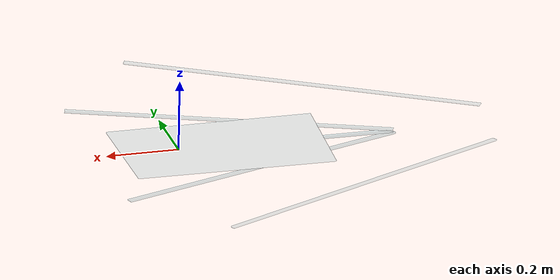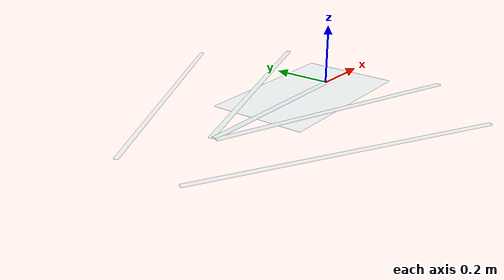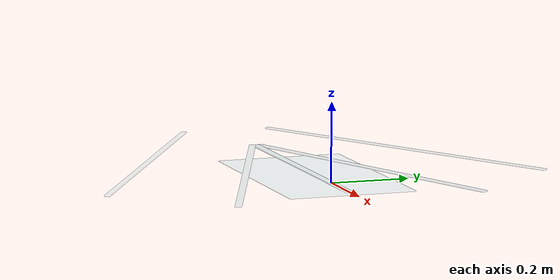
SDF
<?xml version="1.0"?>
<sdf version="1.9">
  <model name="rov_surface_wake">
    <static>true</static>
    <link name="link">
      <visual name="wake_center">
        <pose>-0.22 0 0 0 0 0</pose>
        <geometry><box><size>0.72 0.018 0.003</size></box></geometry>
        <material>
          <ambient>0.78 0.96 1.0 0.40</ambient>
          <diffuse>0.78 0.96 1.0 0.40</diffuse>
          <specular>0.90 1.00 1.00 0.55</specular>
        </material>
        <transparency>0.58</transparency>
      </visual>
      <visual name="wake_left_inner">
        <pose>-0.18 0.16 0 0 0 0.36</pose>
        <geometry><box><size>0.86 0.017 0.003</size></box></geometry>
        <material><ambient>0.78 0.96 1.0 0.34</ambient><diffuse>0.78 0.96 1.0 0.34</diffuse><specular>0.90 1.00 1.00 0.48</specular></material>
        <transparency>0.66</transparency>
      </visual>
      <visual name="wake_right_inner">
        <pose>-0.18 -0.16 0 0 0 -0.36</pose>
        <geometry><box><size>0.86 0.017 0.003</size></box></geometry>
        <material><ambient>0.78 0.96 1.0 0.34</ambient><diffuse>0.78 0.96 1.0 0.34</diffuse><specular>0.90 1.00 1.00 0.48</specular></material>
        <transparency>0.66</transparency>
      </visual>
      <visual name="wake_left_outer">
        <pose>-0.42 0.34 0 0 0 0.50</pose>
        <geometry><box><size>0.94 0.014 0.003</size></box></geometry>
        <material><ambient>0.78 0.96 1.0 0.26</ambient><diffuse>0.78 0.96 1.0 0.26</diffuse><specular>0.90 1.00 1.00 0.42</specular></material>
        <transparency>0.74</transparency>
      </visual>
      <visual name="wake_right_outer">
        <pose>-0.42 -0.34 0 0 0 -0.50</pose>
        <geometry><box><size>0.94 0.014 0.003</size></box></geometry>
        <material><ambient>0.78 0.96 1.0 0.26</ambient><diffuse>0.78 0.96 1.0 0.26</diffuse><specular>0.90 1.00 1.00 0.42</specular></material>
        <transparency>0.74</transparency>
      </visual>
      <visual name="disturbed_patch">
        <pose>-0.12 0 -0.002 0 0 0</pose>
        <geometry><box><size>0.55 0.32 0.002</size></box></geometry>
        <material>
          <ambient>0.60 0.92 1.0 0.16</ambient>
          <diffuse>0.60 0.92 1.0 0.16</diffuse>
          <specular>0.85 1.00 1.0 0.40</specular>
        </material>
        <transparency>0.84</transparency>
      </visual>
    </link>
  </model>
</sdf>
